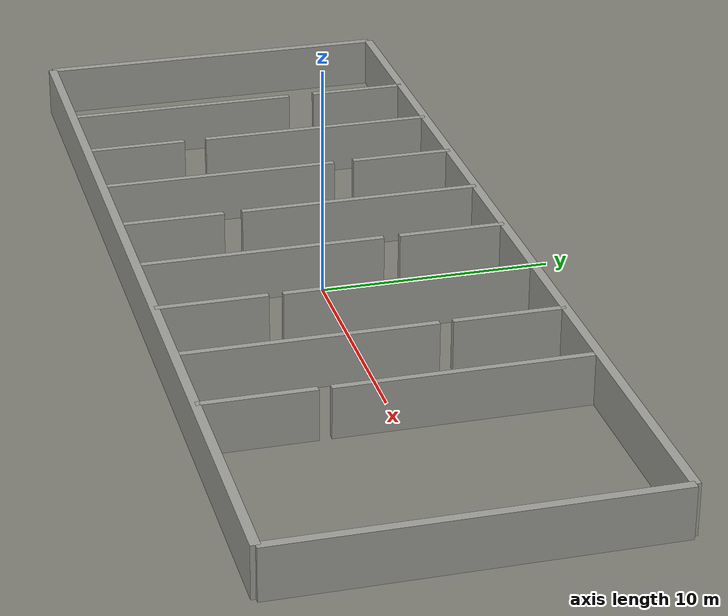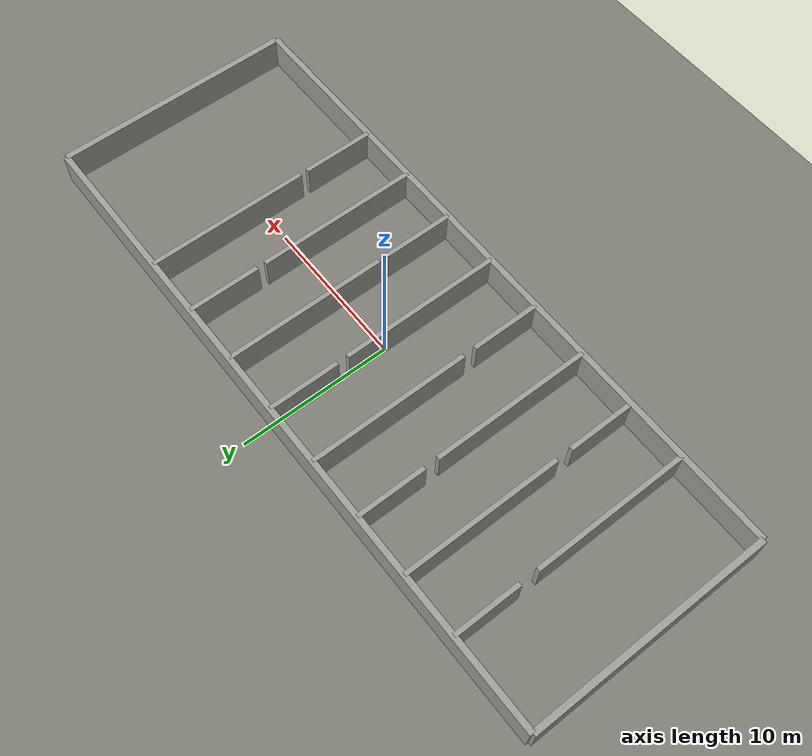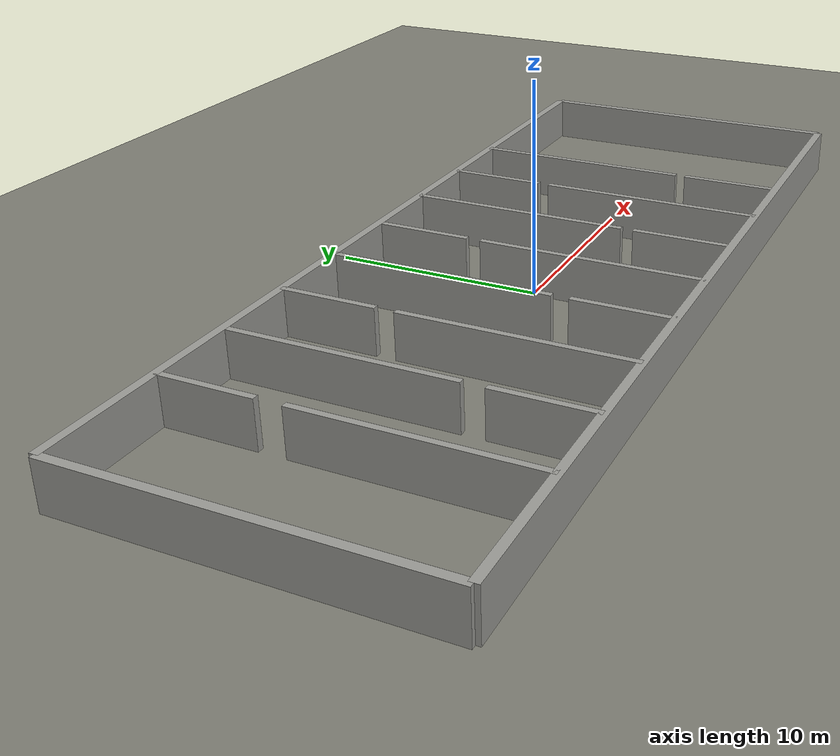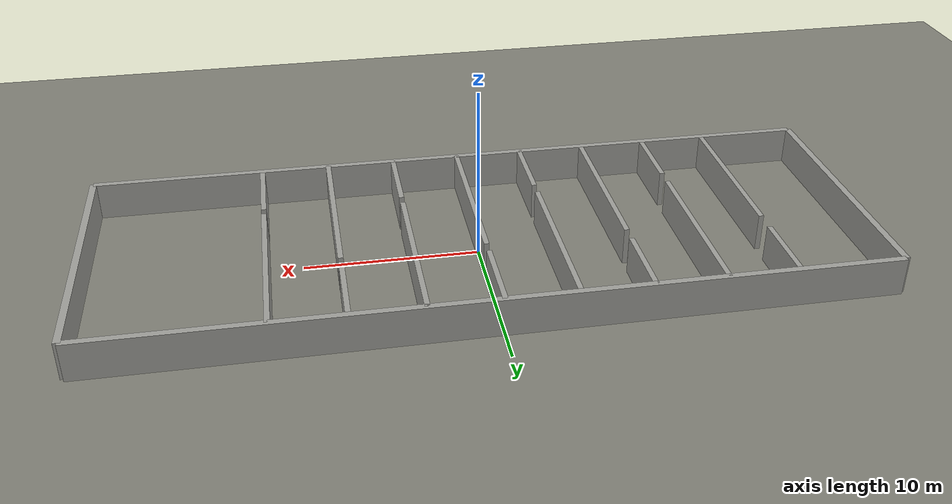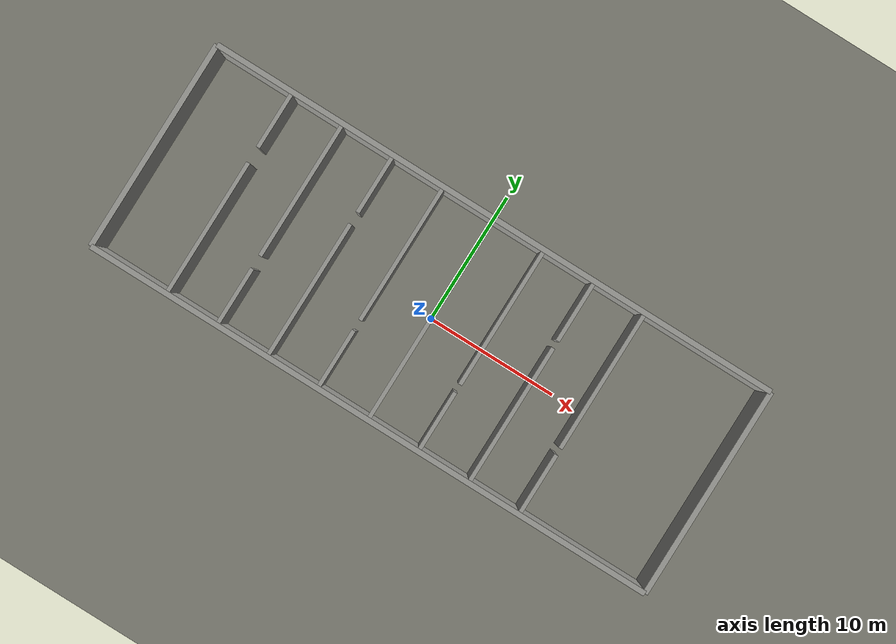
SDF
<?xml version="1.0"?>
<!-- GENERATED by src/nav/scripts/build_world.py - edit the world definition in
     src/nav/scripts/worldgen/worlds/, not this file. -->
<sdf version="1.6">
  <world name="w5_door_gauntlet">
    <physics name="4ms" type="ignored">
      <max_step_size>0.004</max_step_size>
      <real_time_factor>1.0</real_time_factor>
    </physics>
    <plugin filename="ignition-gazebo-physics-system" name="gz::sim::systems::Physics"/>
    <plugin filename="ignition-gazebo-scene-broadcaster-system" name="gz::sim::systems::SceneBroadcaster"/>
    <plugin filename="ignition-gazebo-user-commands-system" name="gz::sim::systems::UserCommands"/>
    <plugin filename="ignition-gazebo-sensors-system" name="gz::sim::systems::Sensors">
      <render_engine>ogre2</render_engine>
    </plugin>

    <gui fullscreen="false">
      <plugin filename="MinimalScene" name="3D View">
        <ignition-gui>
          <title>3D View</title>
          <property type="bool" key="showTitleBar">false</property>
          <property type="string" key="state">docked</property>
        </ignition-gui>
        <engine>ogre2</engine>
        <scene>scene</scene>
        <ambient_light>0.5 0.5 0.5</ambient_light>
        <background_color>0.8 0.85 0.9</background_color>
        <camera_pose>-60 -60 45 0 0.5 0.8</camera_pose>
      </plugin>
      <plugin filename="GzSceneManager" name="Scene Manager">
        <ignition-gui>
          <property key="resizable" type="bool">false</property>
          <property key="width" type="double">5</property>
          <property key="height" type="double">5</property>
          <property key="state" type="string">floating</property>
          <property key="showTitleBar" type="bool">false</property>
        </ignition-gui>
      </plugin>
      <plugin filename="InteractiveViewControl" name="Interactive view control">
        <ignition-gui>
          <property key="resizable" type="bool">false</property>
          <property key="width" type="double">5</property>
          <property key="height" type="double">5</property>
          <property key="state" type="string">floating</property>
          <property key="showTitleBar" type="bool">false</property>
        </ignition-gui>
      </plugin>
    </gui>

    <!-- Directional light high above (z=500) like our other worlds: a light posed
         inside the sensing volume was once misread as geometry by the software
         depth camera (emap step 11). -->
    <light type="directional" name="sun">
      <cast_shadows>true</cast_shadows>
      <pose>0 0 500 0 0 0</pose>
      <diffuse>0.85 0.85 0.8 1</diffuse>
      <specular>0.2 0.2 0.2 1</specular>
      <direction>-0.4 0.2 -0.9</direction>
    </light>

    <model name="ground_plane">
      <static>true</static>
      <pose>0 0 0.0 0 0 0</pose>
      <link name="link">
        <collision name="collision">
          <geometry><plane><normal>0 0 1</normal><size>300.0 300.0</size></plane></geometry>
        </collision>
        <visual name="visual">
          <geometry><plane><normal>0 0 1</normal><size>300.0 300.0</size></plane></geometry>
          <material><ambient>0.5 0.5 0.46 1</ambient><diffuse>0.5 0.5 0.46 1</diffuse><specular>0.05 0.05 0.05 1</specular></material>
        </visual>
      </link>
    </model>

    <model name="hall_S0"><static>true</static><pose>0.0000 -8.0000 1.1000 0 0 0.00000</pose><link name="link"><collision name="c"><geometry><box><size>44.0000 0.4000 2.2000</size></box></geometry></collision><visual name="v"><geometry><box><size>44.0000 0.4000 2.2000</size></box></geometry><material><ambient>0.620 0.620 0.600 1</ambient><diffuse>0.620 0.620 0.600 1</diffuse><specular>0.1 0.1 0.1 1</specular></material></visual></link></model>
    <model name="hall_N0"><static>true</static><pose>0.0000 8.0000 1.1000 0 0 0.00000</pose><link name="link"><collision name="c"><geometry><box><size>44.0000 0.4000 2.2000</size></box></geometry></collision><visual name="v"><geometry><box><size>44.0000 0.4000 2.2000</size></box></geometry><material><ambient>0.620 0.620 0.600 1</ambient><diffuse>0.620 0.620 0.600 1</diffuse><specular>0.1 0.1 0.1 1</specular></material></visual></link></model>
    <model name="hall_W0"><static>true</static><pose>-22.0000 0.0000 1.1000 0 0 1.57080</pose><link name="link"><collision name="c"><geometry><box><size>16.0000 0.4000 2.2000</size></box></geometry></collision><visual name="v"><geometry><box><size>16.0000 0.4000 2.2000</size></box></geometry><material><ambient>0.620 0.620 0.600 1</ambient><diffuse>0.620 0.620 0.600 1</diffuse><specular>0.1 0.1 0.1 1</specular></material></visual></link></model>
    <model name="hall_E0"><static>true</static><pose>22.0000 0.0000 1.1000 0 0 1.57080</pose><link name="link"><collision name="c"><geometry><box><size>16.0000 0.4000 2.2000</size></box></geometry></collision><visual name="v"><geometry><box><size>16.0000 0.4000 2.2000</size></box></geometry><material><ambient>0.620 0.620 0.600 1</ambient><diffuse>0.620 0.620 0.600 1</diffuse><specular>0.1 0.1 0.1 1</specular></material></visual></link></model>
    <model name="w1_s"><static>true</static><pose>-16.0000 -2.8000 1.1000 0 0 1.57080</pose><link name="link"><collision name="c"><geometry><box><size>10.4000 0.3000 2.2000</size></box></geometry></collision><visual name="v"><geometry><box><size>10.4000 0.3000 2.2000</size></box></geometry><material><ambient>0.620 0.620 0.600 1</ambient><diffuse>0.620 0.620 0.600 1</diffuse><specular>0.1 0.1 0.1 1</specular></material></visual></link></model>
    <model name="w1_n"><static>true</static><pose>-16.0000 5.8000 1.1000 0 0 1.57080</pose><link name="link"><collision name="c"><geometry><box><size>4.4000 0.3000 2.2000</size></box></geometry></collision><visual name="v"><geometry><box><size>4.4000 0.3000 2.2000</size></box></geometry><material><ambient>0.620 0.620 0.600 1</ambient><diffuse>0.620 0.620 0.600 1</diffuse><specular>0.1 0.1 0.1 1</specular></material></visual></link></model>
    <model name="w2_s"><static>true</static><pose>-12.0000 -5.7500 1.1000 0 0 1.57080</pose><link name="link"><collision name="c"><geometry><box><size>4.5000 0.3000 2.2000</size></box></geometry></collision><visual name="v"><geometry><box><size>4.5000 0.3000 2.2000</size></box></geometry><material><ambient>0.620 0.620 0.600 1</ambient><diffuse>0.620 0.620 0.600 1</diffuse><specular>0.1 0.1 0.1 1</specular></material></visual></link></model>
    <model name="w2_n"><static>true</static><pose>-12.0000 2.7500 1.1000 0 0 1.57080</pose><link name="link"><collision name="c"><geometry><box><size>10.5000 0.3000 2.2000</size></box></geometry></collision><visual name="v"><geometry><box><size>10.5000 0.3000 2.2000</size></box></geometry><material><ambient>0.620 0.620 0.600 1</ambient><diffuse>0.620 0.620 0.600 1</diffuse><specular>0.1 0.1 0.1 1</specular></material></visual></link></model>
    <model name="w3_s"><static>true</static><pose>-8.0000 -2.7250 1.1000 0 0 1.57080</pose><link name="link"><collision name="c"><geometry><box><size>10.5500 0.3000 2.2000</size></box></geometry></collision><visual name="v"><geometry><box><size>10.5500 0.3000 2.2000</size></box></geometry><material><ambient>0.620 0.620 0.600 1</ambient><diffuse>0.620 0.620 0.600 1</diffuse><specular>0.1 0.1 0.1 1</specular></material></visual></link></model>
    <model name="w3_n"><static>true</static><pose>-8.0000 5.7250 1.1000 0 0 1.57080</pose><link name="link"><collision name="c"><geometry><box><size>4.5500 0.3000 2.2000</size></box></geometry></collision><visual name="v"><geometry><box><size>4.5500 0.3000 2.2000</size></box></geometry><material><ambient>0.620 0.620 0.600 1</ambient><diffuse>0.620 0.620 0.600 1</diffuse><specular>0.1 0.1 0.1 1</specular></material></visual></link></model>
    <model name="w4_s"><static>true</static><pose>-4.0000 -5.7000 1.1000 0 0 1.57080</pose><link name="link"><collision name="c"><geometry><box><size>4.6000 0.3000 2.2000</size></box></geometry></collision><visual name="v"><geometry><box><size>4.6000 0.3000 2.2000</size></box></geometry><material><ambient>0.620 0.620 0.600 1</ambient><diffuse>0.620 0.620 0.600 1</diffuse><specular>0.1 0.1 0.1 1</specular></material></visual></link></model>
    <model name="w4_n"><static>true</static><pose>-4.0000 2.7000 1.1000 0 0 1.57080</pose><link name="link"><collision name="c"><geometry><box><size>10.6000 0.3000 2.2000</size></box></geometry></collision><visual name="v"><geometry><box><size>10.6000 0.3000 2.2000</size></box></geometry><material><ambient>0.620 0.620 0.600 1</ambient><diffuse>0.620 0.620 0.600 1</diffuse><specular>0.1 0.1 0.1 1</specular></material></visual></link></model>
    <model name="w5_s"><static>true</static><pose>0.0000 -2.6750 1.1000 0 0 1.57080</pose><link name="link"><collision name="c"><geometry><box><size>10.6500 0.3000 2.2000</size></box></geometry></collision><visual name="v"><geometry><box><size>10.6500 0.3000 2.2000</size></box></geometry><material><ambient>0.620 0.620 0.600 1</ambient><diffuse>0.620 0.620 0.600 1</diffuse><specular>0.1 0.1 0.1 1</specular></material></visual></link></model>
    <model name="w5_n"><static>true</static><pose>0.0000 5.6750 1.1000 0 0 1.57080</pose><link name="link"><collision name="c"><geometry><box><size>4.6500 0.3000 2.2000</size></box></geometry></collision><visual name="v"><geometry><box><size>4.6500 0.3000 2.2000</size></box></geometry><material><ambient>0.620 0.620 0.600 1</ambient><diffuse>0.620 0.620 0.600 1</diffuse><specular>0.1 0.1 0.1 1</specular></material></visual></link></model>
    <model name="w6_s"><static>true</static><pose>4.0000 -5.6500 1.1000 0 0 1.57080</pose><link name="link"><collision name="c"><geometry><box><size>4.7000 0.3000 2.2000</size></box></geometry></collision><visual name="v"><geometry><box><size>4.7000 0.3000 2.2000</size></box></geometry><material><ambient>0.620 0.620 0.600 1</ambient><diffuse>0.620 0.620 0.600 1</diffuse><specular>0.1 0.1 0.1 1</specular></material></visual></link></model>
    <model name="w6_n"><static>true</static><pose>4.0000 2.6500 1.1000 0 0 1.57080</pose><link name="link"><collision name="c"><geometry><box><size>10.7000 0.3000 2.2000</size></box></geometry></collision><visual name="v"><geometry><box><size>10.7000 0.3000 2.2000</size></box></geometry><material><ambient>0.620 0.620 0.600 1</ambient><diffuse>0.620 0.620 0.600 1</diffuse><specular>0.1 0.1 0.1 1</specular></material></visual></link></model>
    <model name="w7_s"><static>true</static><pose>8.0000 -2.6375 1.1000 0 0 1.57080</pose><link name="link"><collision name="c"><geometry><box><size>10.7250 0.3000 2.2000</size></box></geometry></collision><visual name="v"><geometry><box><size>10.7250 0.3000 2.2000</size></box></geometry><material><ambient>0.620 0.620 0.600 1</ambient><diffuse>0.620 0.620 0.600 1</diffuse><specular>0.1 0.1 0.1 1</specular></material></visual></link></model>
    <model name="w7_n"><static>true</static><pose>8.0000 5.6375 1.1000 0 0 1.57080</pose><link name="link"><collision name="c"><geometry><box><size>4.7250 0.3000 2.2000</size></box></geometry></collision><visual name="v"><geometry><box><size>4.7250 0.3000 2.2000</size></box></geometry><material><ambient>0.620 0.620 0.600 1</ambient><diffuse>0.620 0.620 0.600 1</diffuse><specular>0.1 0.1 0.1 1</specular></material></visual></link></model>
    <model name="w8_s"><static>true</static><pose>12.0000 -5.6250 1.1000 0 0 1.57080</pose><link name="link"><collision name="c"><geometry><box><size>4.7500 0.3000 2.2000</size></box></geometry></collision><visual name="v"><geometry><box><size>4.7500 0.3000 2.2000</size></box></geometry><material><ambient>0.620 0.620 0.600 1</ambient><diffuse>0.620 0.620 0.600 1</diffuse><specular>0.1 0.1 0.1 1</specular></material></visual></link></model>
    <model name="w8_n"><static>true</static><pose>12.0000 2.6250 1.1000 0 0 1.57080</pose><link name="link"><collision name="c"><geometry><box><size>10.7500 0.3000 2.2000</size></box></geometry></collision><visual name="v"><geometry><box><size>10.7500 0.3000 2.2000</size></box></geometry><material><ambient>0.620 0.620 0.600 1</ambient><diffuse>0.620 0.620 0.600 1</diffuse><specular>0.1 0.1 0.1 1</specular></material></visual></link></model>

  </world>
</sdf>
